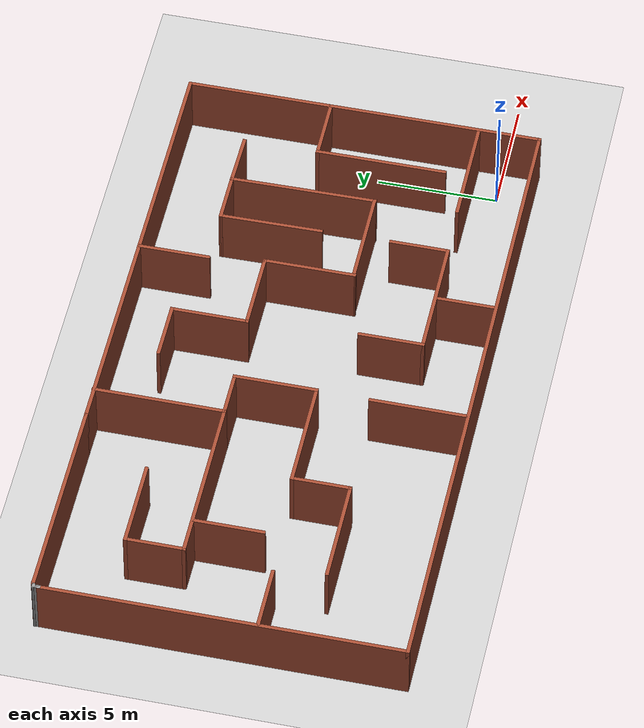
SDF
<sdf version="1.6">
 <world name="default">
  <light name="sun" type="directional">
   <pose>0 0 10 0 -0 0</pose>
   <diffuse>0.8 0.8 0.8 1</diffuse>
   <specular>0.2 0.2 0.2 1</specular>
   <attenuation>
    <range>1000</range>
    <constant>0.9</constant>
    <linear>0.01</linear>
    <quadratic>0.001</quadratic>
   </attenuation>
   <direction>-0.5 0.1 -0.9</direction>
  </light>
  <model name="ground_plane">
   <static>1</static>
   <link name="link">
    <collision name="collision">
     <geometry><plane><normal>0 0 1</normal><size>100 100</size></plane></geometry>
     <surface>
      <contact><collide_bitmask>65535</collide_bitmask></contact>
      <friction><ode><mu>100</mu><mu2>50</mu2></ode></friction>
     </surface>
    </collision>
    <visual name="visual">
     <cast_shadows>0</cast_shadows>
     <geometry><plane><normal>0 0 1</normal><size>100 100</size></plane></geometry>
     <material>
      <script><uri>file://media/materials/scripts/gazebo.material</uri><name>Gazebo/Grey</name></script>
     </material>
    </visual>
   </link>
  </model>
  <gravity>0 0 -9.8</gravity>
  <magnetic_field>6e-06 2.3e-05 -4.2e-05</magnetic_field>
  <atmosphere type="adiabatic"/>
  <physics name="default_physics" default="0" type="ode">
   <max_step_size>0.001</max_step_size>
   <real_time_factor>1</real_time_factor>
   <real_time_update_rate>1000</real_time_update_rate>
  </physics>
  <scene><ambient>0.4 0.4 0.4 1</ambient><background>0.7 0.7 0.7 1</background><shadows>1</shadows></scene>
  <audio><device>default</device></audio>
  <spherical_coordinates>
   <surface_model>EARTH_WGS84</surface_model>
   <latitude_deg>0</latitude_deg>
   <longitude_deg>0</longitude_deg>
   <elevation>0</elevation>
   <heading_deg>0</heading_deg>
  </spherical_coordinates>
  <model name="maze">
   <pose>-12 6 0 0 -0 0</pose>
   <link name="Wall_0">
    <collision name="Wall_0_Collision">
     <geometry><box><size>18.5 0.15 2.5</size></box></geometry>
     <pose>0 0 1.25 0 -0 0</pose>
    </collision>
    <visual name="Wall_0_Visual">
     <pose>0 0 1.25 0 -0 0</pose>
     <geometry><box><size>18.5 0.15 2.5</size></box></geometry>
     <material>
      <script><uri>file://media/materials/scripts/gazebo.material</uri><name>Gazebo/Bricks</name></script>
      <ambient>1 1 1 1</ambient>
     </material>
     <meta><layer>0</layer></meta>
    </visual>
    <pose>4.38493 7.41404 0 0 -0 0</pose>
   </link>
   <link name="Wall_1">
    <collision name="Wall_1_Collision">
     <geometry><box><size>15 0.15 2.5</size></box></geometry>
     <pose>0 0 1.25 0 -0 0</pose>
    </collision>
    <visual name="Wall_1_Visual">
     <pose>0 0 1.25 0 -0 0</pose>
     <geometry><box><size>15 0.15 2.5</size></box></geometry>
     <material>
      <script><uri>file://media/materials/scripts/gazebo.material</uri><name>Gazebo/Bricks</name></script>
      <ambient>1 1 1 1</ambient>
     </material>
     <meta><layer>0</layer></meta>
    </visual>
    <pose>13.5599 -0.010963 0 0 -0 -1.5708</pose>
   </link>
   <link name="Wall_101">
    <collision name="Wall_101_Collision">
     <geometry><box><size>2.75 0.15 2.5</size></box></geometry>
     <pose>0 0 1.25 0 -0 0</pose>
    </collision>
    <visual name="Wall_101_Visual">
     <pose>0 0 1.25 0 -0 0</pose>
     <geometry><box><size>2.75 0.15 2.5</size></box></geometry>
     <material>
      <script><uri>file://media/materials/scripts/gazebo.material</uri><name>Gazebo/Bricks</name></script>
      <ambient>1 1 1 1</ambient>
     </material>
     <meta><layer>0</layer></meta>
    </visual>
    <pose>12.2478 1.40189 0 0 -0 3.14159</pose>
   </link>
   <link name="Wall_102">
    <collision name="Wall_102_Collision">
     <geometry><box><size>5.5 0.15 2.5</size></box></geometry>
     <pose>0 0 1.25 0 -0 0</pose>
    </collision>
    <visual name="Wall_102_Visual">
     <pose>0 0 1.25 0 -0 0</pose>
     <geometry><box><size>5.5 0.15 2.5</size></box></geometry>
     <material>
      <script><uri>file://media/materials/scripts/gazebo.material</uri><name>Gazebo/Bricks</name></script>
      <ambient>1 1 1 1</ambient>
     </material>
     <meta><layer>0</layer></meta>
    </visual>
    <pose>10.9478 -1.27311 0 0 -0 -1.5708</pose>
   </link>
   <link name="Wall_104">
    <collision name="Wall_104_Collision">
     <geometry><box><size>2.5 0.15 2.5</size></box></geometry>
     <pose>0 0 1.25 0 -0 0</pose>
    </collision>
    <visual name="Wall_104_Visual">
     <pose>0 0 1.25 0 -0 0</pose>
     <geometry><box><size>2.5 0.15 2.5</size></box></geometry>
     <material>
      <script><uri>file://media/materials/scripts/gazebo.material</uri><name>Gazebo/Bricks</name></script>
      <ambient>1 1 1 1</ambient>
     </material>
     <meta><layer>0</layer></meta>
    </visual>
    <pose>6.74946 -3.7556 0 0 -0 -1.5708</pose>
   </link>
   <link name="Wall_105">
    <collision name="Wall_105_Collision">
     <geometry><box><size>5.25 0.15 2.5</size></box></geometry>
     <pose>0 0 1.25 0 -0 0</pose>
    </collision>
    <visual name="Wall_105_Visual">
     <pose>0 0 1.25 0 -0 0</pose>
     <geometry><box><size>5.25 0.15 2.5</size></box></geometry>
     <material>
      <script><uri>file://media/materials/scripts/gazebo.material</uri><name>Gazebo/Bricks</name></script>
      <ambient>1 1 1 1</ambient>
     </material>
     <meta><layer>0</layer></meta>
    </visual>
    <pose>4.19946 -4.9306 0 0 -0 3.14159</pose>
   </link>
   <link name="Wall_106">
    <collision name="Wall_106_Collision">
     <geometry><box><size>2.75 0.15 2.5</size></box></geometry>
     <pose>0 0 1.25 0 -0 0</pose>
    </collision>
    <visual name="Wall_106_Visual">
     <pose>0 0 1.25 0 -0 0</pose>
     <geometry><box><size>2.75 0.15 2.5</size></box></geometry>
     <material>
      <script><uri>file://media/materials/scripts/gazebo.material</uri><name>Gazebo/Bricks</name></script>
      <ambient>1 1 1 1</ambient>
     </material>
     <meta><layer>0</layer></meta>
    </visual>
    <pose>1.64946 -3.6306 0 0 -0 1.5708</pose>
   </link>
   <link name="Wall_108">
    <collision name="Wall_108_Collision">
     <geometry><box><size>2.5 0.15 2.5</size></box></geometry>
     <pose>0 0 1.25 0 -0 0</pose>
    </collision>
    <visual name="Wall_108_Visual">
     <pose>0 0 1.25 0 -0 0</pose>
     <geometry><box><size>2.5 0.15 2.5</size></box></geometry>
     <material>
      <script><uri>file://media/materials/scripts/gazebo.material</uri><name>Gazebo/Bricks</name></script>
      <ambient>1 1 1 1</ambient>
     </material>
     <meta><layer>0</layer></meta>
    </visual>
    <pose>4.17492 -6.18854 0 0 -0 -1.5708</pose>
   </link>
   <link name="Wall_110">
    <collision name="Wall_110_Collision">
     <geometry><box><size>4.75 0.15 2.5</size></box></geometry>
     <pose>0 0 1.25 0 -0 0</pose>
    </collision>
    <visual name="Wall_110_Visual">
     <pose>0 0 1.25 0 -0 0</pose>
     <geometry><box><size>4.75 0.15 2.5</size></box></geometry>
     <material>
      <script><uri>file://media/materials/scripts/gazebo.material</uri><name>Gazebo/Bricks</name></script>
      <ambient>1 1 1 1</ambient>
     </material>
     <meta><layer>0</layer></meta>
    </visual>
    <pose>11.2365 -4.88588 0 0 -0 3.14159</pose>
   </link>
   <link name="Wall_2">
    <collision name="Wall_2_Collision">
     <geometry><box><size>27.25 0.15 2.5</size></box></geometry>
     <pose>0 0 1.25 0 -0 0</pose>
    </collision>
    <visual name="Wall_2_Visual">
     <pose>0 0 1.25 0 -0 0</pose>
     <geometry><box><size>27.25 0.15 2.5</size></box></geometry>
     <material>
      <script><uri>file://media/materials/scripts/gazebo.material</uri><name>Gazebo/Bricks</name></script>
      <ambient>1 1 1 1</ambient>
     </material>
     <meta><layer>0</layer></meta>
    </visual>
    <pose>0.009934 -7.43596 0 0 -0 3.14159</pose>
   </link>
   <link name="Wall_3">
    <collision name="Wall_3_Collision">
     <geometry><box><size>14.75 0.15 2.5</size></box></geometry>
     <pose>0 0 1.25 0 -0 0</pose>
    </collision>
    <visual name="Wall_3_Visual">
     <pose>0 0 1.25 0 -0 0</pose>
     <geometry><box><size>14.75 0.15 2.5</size></box></geometry>
     <material>
      <script><uri>file://media/materials/scripts/gazebo.material</uri><name>Gazebo/Bricks</name></script>
      <ambient>1 1 1 1</ambient>
     </material>
     <meta><layer>0</layer></meta>
    </visual>
    <pose>-13.5401 -0.135963 0 0 -0 1.5708</pose>
   </link>
   <link name="Wall_4">
    <collision name="Wall_4_Collision">
     <geometry><box><size>0.25 0.15 2.5</size></box></geometry>
     <pose>0 0 1.25 0 -0 0</pose>
    </collision>
    <visual name="Wall_4_Visual">
     <pose>0 0 1.25 0 -0 0</pose>
     <geometry><box><size>0.25 0.15 2.5</size></box></geometry>
     <material>
      <script><uri>file://media/materials/scripts/gazebo.material</uri><name>Gazebo/Grey</name></script>
      <ambient>1 1 1 1</ambient>
     </material>
     <meta><layer>0</layer></meta>
    </visual>
    <pose>-13.5401 7.21404 0 0 -0 1.5708</pose>
   </link>
   <link name="Wall_5">
    <collision name="Wall_5_Collision">
     <geometry><box><size>0.25 0.15 2.5</size></box></geometry>
     <pose>0 0 1.25 0 -0 0</pose>
    </collision>
    <visual name="Wall_5_Visual">
     <pose>0 0 1.25 0 -0 0</pose>
     <geometry><box><size>0.25 0.15 2.5</size></box></geometry>
     <material>
      <script><uri>file://media/materials/scripts/gazebo.material</uri><name>Gazebo/Grey</name></script>
      <ambient>1 1 1 1</ambient>
     </material>
     <meta><layer>0</layer></meta>
    </visual>
    <pose>-13.5401 7.21404 0 0 -0 -1.5708</pose>
   </link>
   <link name="Wall_6">
    <collision name="Wall_6_Collision">
     <geometry><box><size>0.25 0.15 2.5</size></box></geometry>
     <pose>0 0 1.25 0 -0 0</pose>
    </collision>
    <visual name="Wall_6_Visual">
     <pose>0 0 1.25 0 -0 0</pose>
     <geometry><box><size>0.25 0.15 2.5</size></box></geometry>
     <material>
      <script><uri>file://media/materials/scripts/gazebo.material</uri><name>Gazebo/Grey</name></script>
      <ambient>1 1 1 1</ambient>
     </material>
     <meta><layer>0</layer></meta>
    </visual>
    <pose>-13.5401 7.21404 0 0 -0 1.5708</pose>
   </link>
   <link name="Wall_7">
    <collision name="Wall_7_Collision">
     <geometry><box><size>0.25 0.15 2.5</size></box></geometry>
     <pose>0 0 1.25 0 -0 0</pose>
    </collision>
    <visual name="Wall_7_Visual">
     <pose>0 0 1.25 0 -0 0</pose>
     <geometry><box><size>0.25 0.15 2.5</size></box></geometry>
     <material>
      <script><uri>file://media/materials/scripts/gazebo.material</uri><name>Gazebo/Grey</name></script>
      <ambient>1 1 1 1</ambient>
     </material>
     <meta><layer>0</layer></meta>
    </visual>
    <pose>-13.5401 7.31404 0 0 -0 1.5708</pose>
   </link>
   <link name="Wall_71">
    <collision name="Wall_71_Collision">
     <geometry><box><size>5.5 0.15 2.5</size></box></geometry>
     <pose>0 0 1.25 0 -0 0</pose>
    </collision>
    <visual name="Wall_71_Visual">
     <pose>0 0 1.25 0 -0 0</pose>
     <geometry><box><size>5.5 0.15 2.5</size></box></geometry>
     <material>
      <script><uri>file://media/materials/scripts/gazebo.material</uri><name>Gazebo/Bricks</name></script>
      <ambient>1 1 1 1</ambient>
     </material>
     <meta><layer>0</layer></meta>
    </visual>
    <pose>-3.42801 4.76096 0 0 -0 -1.5708</pose>
   </link>
   <link name="Wall_72">
    <collision name="Wall_72_Collision">
     <geometry><box><size>7.25 0.15 2.5</size></box></geometry>
     <pose>0 0 1.25 0 -0 0</pose>
    </collision>
    <visual name="Wall_72_Visual">
     <pose>0 0 1.25 0 -0 0</pose>
     <geometry><box><size>7.25 0.15 2.5</size></box></geometry>
     <material>
      <script><uri>file://media/materials/scripts/gazebo.material</uri><name>Gazebo/Bricks</name></script>
      <ambient>1 1 1 1</ambient>
     </material>
     <meta><layer>0</layer></meta>
    </visual>
    <pose>-6.97801 2.08596 0 0 -0 3.14159</pose>
   </link>
   <link name="Wall_73">
    <collision name="Wall_73_Collision">
     <geometry><box><size>2.5 0.15 2.5</size></box></geometry>
     <pose>0 0 1.25 0 -0 0</pose>
    </collision>
    <visual name="Wall_73_Visual">
     <pose>0 0 1.25 0 -0 0</pose>
     <geometry><box><size>2.5 0.15 2.5</size></box></geometry>
     <material>
      <script><uri>file://media/materials/scripts/gazebo.material</uri><name>Gazebo/Bricks</name></script>
      <ambient>1 1 1 1</ambient>
     </material>
     <meta><layer>0</layer></meta>
    </visual>
    <pose>-10.528 3.26096 0 0 -0 1.5708</pose>
   </link>
   <link name="Wall_74">
    <collision name="Wall_74_Collision">
     <geometry><box><size>3.75 0.15 2.5</size></box></geometry>
     <pose>0 0 1.25 0 -0 0</pose>
    </collision>
    <visual name="Wall_74_Visual">
     <pose>0 0 1.25 0 -0 0</pose>
     <geometry><box><size>3.75 0.15 2.5</size></box></geometry>
     <material>
      <script><uri>file://media/materials/scripts/gazebo.material</uri><name>Gazebo/Bricks</name></script>
      <ambient>1 1 1 1</ambient>
     </material>
     <meta><layer>0</layer></meta>
    </visual>
    <pose>-8.72801 4.43596 0 0 -0 0</pose>
   </link>
   <link name="Wall_76">
    <collision name="Wall_76_Collision">
     <geometry><box><size>2 0.15 2.5</size></box></geometry>
     <pose>0 0 1.25 0 -0 0</pose>
    </collision>
    <visual name="Wall_76_Visual">
     <pose>0 0 1.25 0 -0 0</pose>
     <geometry><box><size>2 0.15 2.5</size></box></geometry>
     <material>
      <script><uri>file://media/materials/scripts/gazebo.material</uri><name>Gazebo/Bricks</name></script>
      <ambient>1 1 1 1</ambient>
     </material>
     <meta><layer>0</layer></meta>
    </visual>
    <pose>-2.50301 2.08596 0 0 -0 0</pose>
   </link>
   <link name="Wall_77">
    <collision name="Wall_77_Collision">
     <geometry><box><size>3.5 0.15 2.5</size></box></geometry>
     <pose>0 0 1.25 0 -0 0</pose>
    </collision>
    <visual name="Wall_77_Visual">
     <pose>0 0 1.25 0 -0 0</pose>
     <geometry><box><size>3.5 0.15 2.5</size></box></geometry>
     <material>
      <script><uri>file://media/materials/scripts/gazebo.material</uri><name>Gazebo/Bricks</name></script>
      <ambient>1 1 1 1</ambient>
     </material>
     <meta><layer>0</layer></meta>
    </visual>
    <pose>-1.57801 0.410964 0 0 -0 -1.5708</pose>
   </link>
   <link name="Wall_78">
    <collision name="Wall_78_Collision">
     <geometry><box><size>4.75 0.15 2.5</size></box></geometry>
     <pose>0 0 1.25 0 -0 0</pose>
    </collision>
    <visual name="Wall_78_Visual">
     <pose>0 0 1.25 0 -0 0</pose>
     <geometry><box><size>4.75 0.15 2.5</size></box></geometry>
     <material>
      <script><uri>file://media/materials/scripts/gazebo.material</uri><name>Gazebo/Bricks</name></script>
      <ambient>1 1 1 1</ambient>
     </material>
     <meta><layer>0</layer></meta>
    </visual>
    <pose>-3.87801 -1.26404 0 0 -0 3.14159</pose>
   </link>
   <link name="Wall_79">
    <collision name="Wall_79_Collision">
     <geometry><box><size>2.5 0.15 2.5</size></box></geometry>
     <pose>0 0 1.25 0 -0 0</pose>
    </collision>
    <visual name="Wall_79_Visual">
     <pose>0 0 1.25 0 -0 0</pose>
     <geometry><box><size>2.5 0.15 2.5</size></box></geometry>
     <material>
      <script><uri>file://media/materials/scripts/gazebo.material</uri><name>Gazebo/Bricks</name></script>
      <ambient>1 1 1 1</ambient>
     </material>
     <meta><layer>0</layer></meta>
    </visual>
    <pose>-6.17801 -2.43904 0 0 -0 -1.5708</pose>
   </link>
   <link name="Wall_8">
    <collision name="Wall_8_Collision">
     <geometry><box><size>0.308114 0.15 2.5</size></box></geometry>
     <pose>0 0 1.25 0 -0 0</pose>
    </collision>
    <visual name="Wall_8_Visual">
     <pose>0 0 1.25 0 -0 0</pose>
     <geometry><box><size>0.308114 0.15 2.5</size></box></geometry>
     <material>
      <script><uri>file://media/materials/scripts/gazebo.material</uri><name>Gazebo/Grey</name></script>
      <ambient>1 1 1 1</ambient>
     </material>
     <meta><layer>0</layer></meta>
    </visual>
    <pose>-13.4651 7.38904 0 0 -0 0.321751</pose>
   </link>
   <link name="Wall_80">
    <collision name="Wall_80_Collision">
     <geometry><box><size>4.5 0.15 2.5</size></box></geometry>
     <pose>0 0 1.25 0 -0 0</pose>
    </collision>
    <visual name="Wall_80_Visual">
     <pose>0 0 1.25 0 -0 0</pose>
     <geometry><box><size>4.5 0.15 2.5</size></box></geometry>
     <material>
      <script><uri>file://media/materials/scripts/gazebo.material</uri><name>Gazebo/Bricks</name></script>
      <ambient>1 1 1 1</ambient>
     </material>
     <meta><layer>0</layer></meta>
    </visual>
    <pose>-8.35301 -3.61404 0 0 -0 3.14159</pose>
   </link>
   <link name="Wall_82">
    <collision name="Wall_82_Collision">
     <geometry><box><size>3 0.15 2.5</size></box></geometry>
     <pose>0 0 1.25 0 -0 0</pose>
    </collision>
    <visual name="Wall_82_Visual">
     <pose>0 0 1.25 0 -0 0</pose>
     <geometry><box><size>3 0.15 2.5</size></box></geometry>
     <material>
      <script><uri>file://media/materials/scripts/gazebo.material</uri><name>Gazebo/Bricks</name></script>
      <ambient>1 1 1 1</ambient>
     </material>
     <meta><layer>0</layer></meta>
    </visual>
    <pose>-9.05981 0.660753 0 0 -0 -1.5708</pose>
   </link>
   <link name="Wall_84">
    <collision name="Wall_84_Collision">
     <geometry><box><size>2.75 0.15 2.5</size></box></geometry>
     <pose>0 0 1.25 0 -0 0</pose>
    </collision>
    <visual name="Wall_84_Visual">
     <pose>0 0 1.25 0 -0 0</pose>
     <geometry><box><size>2.75 0.15 2.5</size></box></geometry>
     <material>
      <script><uri>file://media/materials/scripts/gazebo.material</uri><name>Gazebo/Bricks</name></script>
      <ambient>1 1 1 1</ambient>
     </material>
     <meta><layer>0</layer></meta>
    </visual>
    <pose>-12.1767 -1.53469 0 0 -0 0</pose>
   </link>
   <link name="Wall_86">
    <collision name="Wall_86_Collision">
     <geometry><box><size>4 0.15 2.5</size></box></geometry>
     <pose>0 0 1.25 0 -0 0</pose>
    </collision>
    <visual name="Wall_86_Visual">
     <pose>0 0 1.25 0 -0 0</pose>
     <geometry><box><size>4 0.15 2.5</size></box></geometry>
     <material>
      <script><uri>file://media/materials/scripts/gazebo.material</uri><name>Gazebo/Bricks</name></script>
      <ambient>1 1 1 1</ambient>
     </material>
     <meta><layer>0</layer></meta>
    </visual>
    <pose>-1.61779 -5.39059 0 0 -0 -1.5708</pose>
   </link>
   <link name="Wall_88">
    <collision name="Wall_88_Collision">
     <geometry><box><size>3 0.15 2.5</size></box></geometry>
     <pose>0 0 1.25 0 -0 0</pose>
    </collision>
    <visual name="Wall_88_Visual">
     <pose>0 0 1.25 0 -0 0</pose>
     <geometry><box><size>3 0.15 2.5</size></box></geometry>
     <material>
      <script><uri>file://media/materials/scripts/gazebo.material</uri><name>Gazebo/Bricks</name></script>
      <ambient>1 1 1 1</ambient>
     </material>
     <meta><layer>0</layer></meta>
    </visual>
    <pose>4.33583 5.95096 0 0 -0 -1.5708</pose>
   </link>
   <link name="Wall_9">
    <collision name="Wall_9_Collision">
     <geometry><box><size>8.75 0.15 2.5</size></box></geometry>
     <pose>0 0 1.25 0 -0 0</pose>
    </collision>
    <visual name="Wall_9_Visual">
     <pose>0 0 1.25 0 -0 0</pose>
     <geometry><box><size>8.75 0.15 2.5</size></box></geometry>
     <material>
      <script><uri>file://media/materials/scripts/gazebo.material</uri><name>Gazebo/Bricks</name></script>
      <ambient>1 1 1 1</ambient>
     </material>
     <meta><layer>0</layer></meta>
    </visual>
    <pose>-9.09007 7.41404 0 0 -0 0</pose>
   </link>
   <link name="Wall_90">
    <collision name="Wall_90_Collision">
     <geometry><box><size>2.5 0.15 2.5</size></box></geometry>
     <pose>0 0 1.25 0 -0 0</pose>
    </collision>
    <visual name="Wall_90_Visual">
     <pose>0 0 1.25 0 -0 0</pose>
     <geometry><box><size>2.5 0.15 2.5</size></box></geometry>
     <material>
      <script><uri>file://media/materials/scripts/gazebo.material</uri><name>Gazebo/Bricks</name></script>
      <ambient>1 1 1 1</ambient>
     </material>
     <meta><layer>0</layer></meta>
    </visual>
    <pose>0.16062 5.34415 0 0 -0 0</pose>
   </link>
   <link name="Wall_91">
    <collision name="Wall_91_Collision">
     <geometry><box><size>3.25 0.15 2.5</size></box></geometry>
     <pose>0 0 1.25 0 -0 0</pose>
    </collision>
    <visual name="Wall_91_Visual">
     <pose>0 0 1.25 0 -0 0</pose>
     <geometry><box><size>3.25 0.15 2.5</size></box></geometry>
     <material>
      <script><uri>file://media/materials/scripts/gazebo.material</uri><name>Gazebo/Bricks</name></script>
      <ambient>1 1 1 1</ambient>
     </material>
     <meta><layer>0</layer></meta>
    </visual>
    <pose>1.33562 3.79415 0 0 -0 -1.5708</pose>
   </link>
   <link name="Wall_92">
    <collision name="Wall_92_Collision">
     <geometry><box><size>3.45227 0.15 2.5</size></box></geometry>
     <pose>0 0 1.25 0 -0 0</pose>
    </collision>
    <visual name="Wall_92_Visual">
     <pose>0 0 1.25 0 -0 0</pose>
     <geometry><box><size>3.45227 0.15 2.5</size></box></geometry>
     <material>
      <script><uri>file://media/materials/scripts/gazebo.material</uri><name>Gazebo/Bricks</name></script>
      <ambient>1 1 1 1</ambient>
     </material>
     <meta><layer>0</layer></meta>
    </visual>
    <pose>2.98676 2.24415 0 0 -0 0</pose>
   </link>
   <link name="Wall_93">
    <collision name="Wall_93_Collision">
     <geometry><box><size>3.87164 0.15 2.5</size></box></geometry>
     <pose>0 0 1.25 0 -0 0</pose>
    </collision>
    <visual name="Wall_93_Visual">
     <pose>0 0 1.25 0 -0 0</pose>
     <geometry><box><size>3.87164 0.15 2.5</size></box></geometry>
     <material>
      <script><uri>file://media/materials/scripts/gazebo.material</uri><name>Gazebo/Bricks</name></script>
      <ambient>1 1 1 1</ambient>
     </material>
     <meta><layer>0</layer></meta>
    </visual>
    <pose>4.65588 0.383332 0 0 -0 -1.56968</pose>
   </link>
   <link name="Wall_94">
    <collision name="Wall_94_Collision">
     <geometry><box><size>4.2699 0.15 2.5</size></box></geometry>
     <pose>0 0 1.25 0 -0 0</pose>
    </collision>
    <visual name="Wall_94_Visual">
     <pose>0 0 1.25 0 -0 0</pose>
     <geometry><box><size>4.2699 0.15 2.5</size></box></geometry>
     <material>
      <script><uri>file://media/materials/scripts/gazebo.material</uri><name>Gazebo/Bricks</name></script>
      <ambient>1 1 1 1</ambient>
     </material>
     <meta><layer>0</layer></meta>
    </visual>
    <pose>6.71791 -1.45343 0 0 -0 0</pose>
   </link>
   <link name="Wall_95">
    <collision name="Wall_95_Collision">
     <geometry><box><size>6.1588 0.15 2.5</size></box></geometry>
     <pose>0 0 1.25 0 -0 0</pose>
    </collision>
    <visual name="Wall_95_Visual">
     <pose>0 0 1.25 0 -0 0</pose>
     <geometry><box><size>6.1588 0.15 2.5</size></box></geometry>
     <material>
      <script><uri>file://media/materials/scripts/gazebo.material</uri><name>Gazebo/Bricks</name></script>
      <ambient>1 1 1 1</ambient>
     </material>
     <meta><layer>0</layer></meta>
    </visual>
    <pose>8.74494 1.52673 0 0 -0 1.58175</pose>
   </link>
   <link name="Wall_96">
    <collision name="Wall_96_Collision">
     <geometry><box><size>2.32391 0.15 2.5</size></box></geometry>
     <pose>0 0 1.25 0 -0 0</pose>
    </collision>
    <visual name="Wall_96_Visual">
     <pose>0 0 1.25 0 -0 0</pose>
     <geometry><box><size>2.32391 0.15 2.5</size></box></geometry>
     <material>
      <script><uri>file://media/materials/scripts/gazebo.material</uri><name>Gazebo/Bricks</name></script>
      <ambient>1 1 1 1</ambient>
     </material>
     <meta><layer>0</layer></meta>
    </visual>
    <pose>9.79882 4.51255 0 0 -0 -0.016929</pose>
   </link>
   <link name="Wall_98">
    <collision name="Wall_98_Collision">
     <geometry><box><size>2.25 0.15 2.5</size></box></geometry>
     <pose>0 0 1.25 0 -0 0</pose>
    </collision>
    <visual name="Wall_98_Visual">
     <pose>0 0 1.25 0 -0 0</pose>
     <geometry><box><size>2.25 0.15 2.5</size></box></geometry>
     <material>
      <script><uri>file://media/materials/scripts/gazebo.material</uri><name>Gazebo/Bricks</name></script>
      <ambient>1 1 1 1</ambient>
     </material>
     <meta><layer>0</layer></meta>
    </visual>
    <pose>7.69882 4.53095 0 0 -0 3.14159</pose>
   </link>
   <link name="Wall_99">
    <collision name="Wall_99_Collision">
     <geometry><box><size>4.33409 0.15 2.5</size></box></geometry>
     <pose>0 0 1.25 0 -0 0</pose>
    </collision>
    <visual name="Wall_99_Visual">
     <pose>0 0 1.25 0 -0 0</pose>
     <geometry><box><size>4.33409 0.15 2.5</size></box></geometry>
     <material>
      <script><uri>file://media/materials/scripts/gazebo.material</uri><name>Gazebo/Bricks</name></script>
      <ambient>1 1 1 1</ambient>
     </material>
     <meta><layer>0</layer></meta>
    </visual>
    <pose>6.67324 2.43905 0 0 -0 -1.55913</pose>
   </link>
   <static>1</static>
  </model>
 </world>
</sdf>
